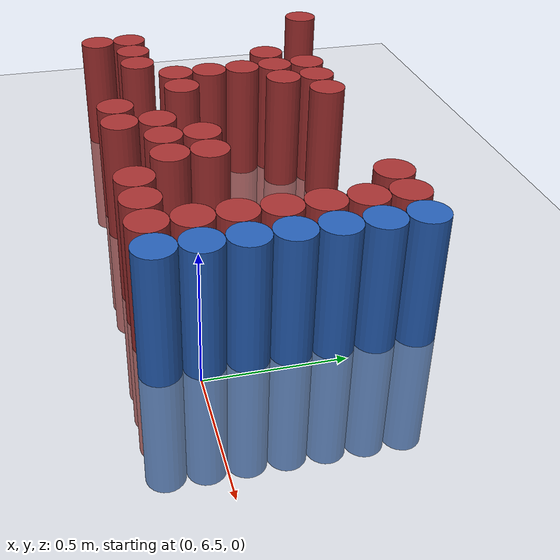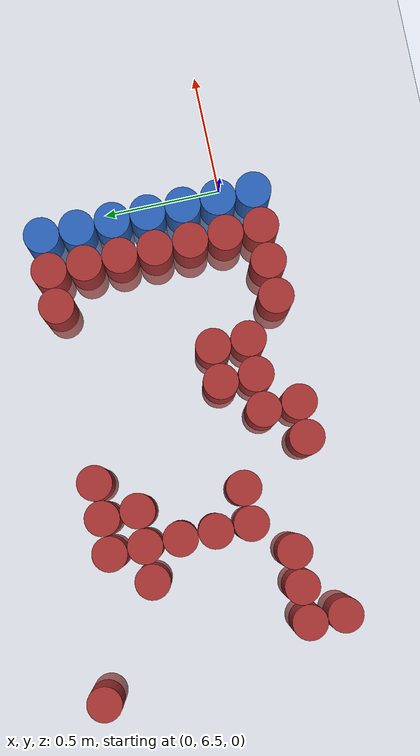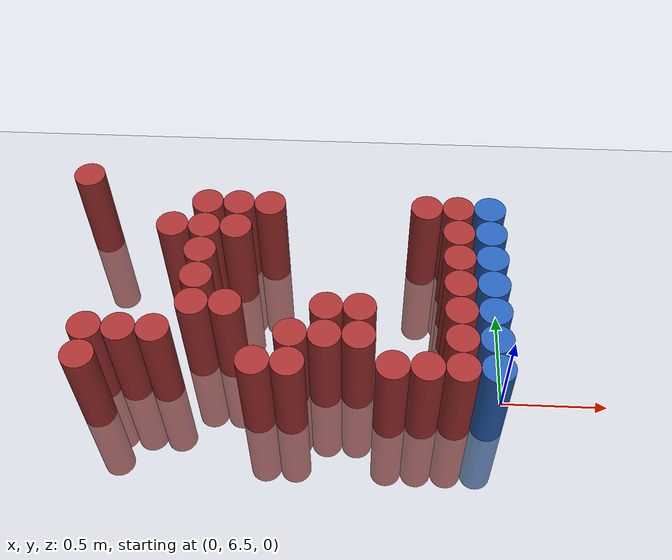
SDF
<sdf version="1.6">
 <world name="default">
  <model name="ground_plane">
   <static>1</static>
   <link name="link">
    <collision name="collision">
     <geometry><plane><normal>0 0 1</normal><size>100 100</size></plane></geometry>
     <surface><friction><ode><mu>100</mu><mu2>50</mu2></ode></friction></surface>
    </collision>
    <visual name="visual">
     <cast_shadows>0</cast_shadows>
     <geometry><plane><normal>0 0 1</normal><size>100 100</size></plane></geometry>
     <material>
      <script><uri>file://media/materials/scripts/gazebo.material</uri><name>Gazebo/Grey</name></script>
     </material>
    </visual>
   </link>
  </model>
  <model name="unit_cylinder_194">
   <static>1</static>
   <pose>-2.025000 7.425000 0.000000 0.000000 0.000000 0.000000</pose>
   <link name="link">
    <inertial>
     <mass>1</mass>
     <inertia><ixx>0.145833</ixx><ixy>0</ixy><ixz>0</ixz><iyy>0.145833</iyy><iyz>0</iyz><izz>0.125</izz></inertia>
    </inertial>
    <collision name="collision">
     <geometry><cylinder><radius>0.075000</radius><length>1</length></cylinder></geometry>
    </collision>
    <visual name="visual">
     <geometry><cylinder><radius>0.075000</radius><length>1</length></cylinder></geometry>
     <material>
      <ambient>0.648000 0.192000 0.192000 1</ambient>
      <diffuse>0.648000 0.192000 0.192000 1</diffuse>
     </material>
     <material>
      <script><name>Gazebo/Grey</name><uri>file://media/materials/scripts/gazebo.material</uri></script>
     </material>
    </visual>
    <sensor name="sensor_contact" type="contact"><contact><collision>collision</collision></contact></sensor>
   </link>
   <plugin filename="gz-sim-touchplugin-system" name="gz::sim::systems::TouchPlugin">
    <target>robot</target>
    <namespace>robot</namespace>
    <time>0.001</time>
    <enabled>true</enabled>
   </plugin>
  </model>
  <model name="unit_cylinder_198">
   <static>1</static>
   <pose>-1.875000 6.375000 0.000000 0.000000 0.000000 0.000000</pose>
   <link name="link">
    <inertial>
     <mass>1</mass>
     <inertia><ixx>0.145833</ixx><ixy>0</ixy><ixz>0</ixz><iyy>0.145833</iyy><iyz>0</iyz><izz>0.125</izz></inertia>
    </inertial>
    <collision name="collision">
     <geometry><cylinder><radius>0.075000</radius><length>1</length></cylinder></geometry>
    </collision>
    <visual name="visual">
     <geometry><cylinder><radius>0.075000</radius><length>1</length></cylinder></geometry>
     <material>
      <ambient>0.648000 0.192000 0.192000 1</ambient>
      <diffuse>0.648000 0.192000 0.192000 1</diffuse>
     </material>
     <material>
      <script><name>Gazebo/Grey</name><uri>file://media/materials/scripts/gazebo.material</uri></script>
     </material>
    </visual>
    <sensor name="sensor_contact" type="contact"><contact><collision>collision</collision></contact></sensor>
   </link>
   <plugin filename="gz-sim-touchplugin-system" name="gz::sim::systems::TouchPlugin">
    <target>robot</target>
    <namespace>robot</namespace>
    <time>0.001</time>
    <enabled>true</enabled>
   </plugin>
  </model>
  <model name="unit_cylinder_199">
   <static>1</static>
   <pose>-1.875000 6.525000 0.000000 0.000000 0.000000 0.000000</pose>
   <link name="link">
    <inertial>
     <mass>1</mass>
     <inertia><ixx>0.145833</ixx><ixy>0</ixy><ixz>0</ixz><iyy>0.145833</iyy><iyz>0</iyz><izz>0.125</izz></inertia>
    </inertial>
    <collision name="collision">
     <geometry><cylinder><radius>0.075000</radius><length>1</length></cylinder></geometry>
    </collision>
    <visual name="visual">
     <geometry><cylinder><radius>0.075000</radius><length>1</length></cylinder></geometry>
     <material>
      <ambient>0.648000 0.192000 0.192000 1</ambient>
      <diffuse>0.648000 0.192000 0.192000 1</diffuse>
     </material>
     <material>
      <script><name>Gazebo/Grey</name><uri>file://media/materials/scripts/gazebo.material</uri></script>
     </material>
    </visual>
    <sensor name="sensor_contact" type="contact"><contact><collision>collision</collision></contact></sensor>
   </link>
   <plugin filename="gz-sim-touchplugin-system" name="gz::sim::systems::TouchPlugin">
    <target>robot</target>
    <namespace>robot</namespace>
    <time>0.001</time>
    <enabled>true</enabled>
   </plugin>
  </model>
  <model name="unit_cylinder_205">
   <static>1</static>
   <pose>-1.725000 6.525000 0.000000 0.000000 0.000000 0.000000</pose>
   <link name="link">
    <inertial>
     <mass>1</mass>
     <inertia><ixx>0.145833</ixx><ixy>0</ixy><ixz>0</ixz><iyy>0.145833</iyy><iyz>0</iyz><izz>0.125</izz></inertia>
    </inertial>
    <collision name="collision">
     <geometry><cylinder><radius>0.075000</radius><length>1</length></cylinder></geometry>
    </collision>
    <visual name="visual">
     <geometry><cylinder><radius>0.075000</radius><length>1</length></cylinder></geometry>
     <material>
      <ambient>0.648000 0.192000 0.192000 1</ambient>
      <diffuse>0.648000 0.192000 0.192000 1</diffuse>
     </material>
     <material>
      <script><name>Gazebo/Grey</name><uri>file://media/materials/scripts/gazebo.material</uri></script>
     </material>
    </visual>
    <sensor name="sensor_contact" type="contact"><contact><collision>collision</collision></contact></sensor>
   </link>
   <plugin filename="gz-sim-touchplugin-system" name="gz::sim::systems::TouchPlugin">
    <target>robot</target>
    <namespace>robot</namespace>
    <time>0.001</time>
    <enabled>true</enabled>
   </plugin>
  </model>
  <model name="unit_cylinder_211">
   <static>1</static>
   <pose>-1.575000 6.525000 0.000000 0.000000 0.000000 0.000000</pose>
   <link name="link">
    <inertial>
     <mass>1</mass>
     <inertia><ixx>0.145833</ixx><ixy>0</ixy><ixz>0</ixz><iyy>0.145833</iyy><iyz>0</iyz><izz>0.125</izz></inertia>
    </inertial>
    <collision name="collision">
     <geometry><cylinder><radius>0.075000</radius><length>1</length></cylinder></geometry>
    </collision>
    <visual name="visual">
     <geometry><cylinder><radius>0.075000</radius><length>1</length></cylinder></geometry>
     <material>
      <ambient>0.648000 0.192000 0.192000 1</ambient>
      <diffuse>0.648000 0.192000 0.192000 1</diffuse>
     </material>
     <material>
      <script><name>Gazebo/Grey</name><uri>file://media/materials/scripts/gazebo.material</uri></script>
     </material>
    </visual>
    <sensor name="sensor_contact" type="contact"><contact><collision>collision</collision></contact></sensor>
   </link>
   <plugin filename="gz-sim-touchplugin-system" name="gz::sim::systems::TouchPlugin">
    <target>robot</target>
    <namespace>robot</namespace>
    <time>0.001</time>
    <enabled>true</enabled>
   </plugin>
  </model>
  <model name="unit_cylinder_212">
   <static>1</static>
   <pose>-1.575000 7.125000 0.000000 0.000000 0.000000 0.000000</pose>
   <link name="link">
    <inertial>
     <mass>1</mass>
     <inertia><ixx>0.145833</ixx><ixy>0</ixy><ixz>0</ixz><iyy>0.145833</iyy><iyz>0</iyz><izz>0.125</izz></inertia>
    </inertial>
    <collision name="collision">
     <geometry><cylinder><radius>0.075000</radius><length>1</length></cylinder></geometry>
    </collision>
    <visual name="visual">
     <geometry><cylinder><radius>0.075000</radius><length>1</length></cylinder></geometry>
     <material>
      <ambient>0.648000 0.192000 0.192000 1</ambient>
      <diffuse>0.648000 0.192000 0.192000 1</diffuse>
     </material>
     <material>
      <script><name>Gazebo/Grey</name><uri>file://media/materials/scripts/gazebo.material</uri></script>
     </material>
    </visual>
    <sensor name="sensor_contact" type="contact"><contact><collision>collision</collision></contact></sensor>
   </link>
   <plugin filename="gz-sim-touchplugin-system" name="gz::sim::systems::TouchPlugin">
    <target>robot</target>
    <namespace>robot</namespace>
    <time>0.001</time>
    <enabled>true</enabled>
   </plugin>
  </model>
  <model name="unit_cylinder_218">
   <static>1</static>
   <pose>-1.425000 6.675000 0.000000 0.000000 0.000000 0.000000</pose>
   <link name="link">
    <inertial>
     <mass>1</mass>
     <inertia><ixx>0.145833</ixx><ixy>0</ixy><ixz>0</ixz><iyy>0.145833</iyy><iyz>0</iyz><izz>0.125</izz></inertia>
    </inertial>
    <collision name="collision">
     <geometry><cylinder><radius>0.075000</radius><length>1</length></cylinder></geometry>
    </collision>
    <visual name="visual">
     <geometry><cylinder><radius>0.075000</radius><length>1</length></cylinder></geometry>
     <material>
      <ambient>0.648000 0.192000 0.192000 1</ambient>
      <diffuse>0.648000 0.192000 0.192000 1</diffuse>
     </material>
     <material>
      <script><name>Gazebo/Grey</name><uri>file://media/materials/scripts/gazebo.material</uri></script>
     </material>
    </visual>
    <sensor name="sensor_contact" type="contact"><contact><collision>collision</collision></contact></sensor>
   </link>
   <plugin filename="gz-sim-touchplugin-system" name="gz::sim::systems::TouchPlugin">
    <target>robot</target>
    <namespace>robot</namespace>
    <time>0.001</time>
    <enabled>true</enabled>
   </plugin>
  </model>
  <model name="unit_cylinder_219">
   <static>1</static>
   <pose>-1.425000 6.825000 0.000000 0.000000 0.000000 0.000000</pose>
   <link name="link">
    <inertial>
     <mass>1</mass>
     <inertia><ixx>0.145833</ixx><ixy>0</ixy><ixz>0</ixz><iyy>0.145833</iyy><iyz>0</iyz><izz>0.125</izz></inertia>
    </inertial>
    <collision name="collision">
     <geometry><cylinder><radius>0.075000</radius><length>1</length></cylinder></geometry>
    </collision>
    <visual name="visual">
     <geometry><cylinder><radius>0.075000</radius><length>1</length></cylinder></geometry>
     <material>
      <ambient>0.648000 0.192000 0.192000 1</ambient>
      <diffuse>0.648000 0.192000 0.192000 1</diffuse>
     </material>
     <material>
      <script><name>Gazebo/Grey</name><uri>file://media/materials/scripts/gazebo.material</uri></script>
     </material>
    </visual>
    <sensor name="sensor_contact" type="contact"><contact><collision>collision</collision></contact></sensor>
   </link>
   <plugin filename="gz-sim-touchplugin-system" name="gz::sim::systems::TouchPlugin">
    <target>robot</target>
    <namespace>robot</namespace>
    <time>0.001</time>
    <enabled>true</enabled>
   </plugin>
  </model>
  <model name="unit_cylinder_220">
   <static>1</static>
   <pose>-1.425000 6.975000 0.000000 0.000000 0.000000 0.000000</pose>
   <link name="link">
    <inertial>
     <mass>1</mass>
     <inertia><ixx>0.145833</ixx><ixy>0</ixy><ixz>0</ixz><iyy>0.145833</iyy><iyz>0</iyz><izz>0.125</izz></inertia>
    </inertial>
    <collision name="collision">
     <geometry><cylinder><radius>0.075000</radius><length>1</length></cylinder></geometry>
    </collision>
    <visual name="visual">
     <geometry><cylinder><radius>0.075000</radius><length>1</length></cylinder></geometry>
     <material>
      <ambient>0.648000 0.192000 0.192000 1</ambient>
      <diffuse>0.648000 0.192000 0.192000 1</diffuse>
     </material>
     <material>
      <script><name>Gazebo/Grey</name><uri>file://media/materials/scripts/gazebo.material</uri></script>
     </material>
    </visual>
    <sensor name="sensor_contact" type="contact"><contact><collision>collision</collision></contact></sensor>
   </link>
   <plugin filename="gz-sim-touchplugin-system" name="gz::sim::systems::TouchPlugin">
    <target>robot</target>
    <namespace>robot</namespace>
    <time>0.001</time>
    <enabled>true</enabled>
   </plugin>
  </model>
  <model name="unit_cylinder_221">
   <static>1</static>
   <pose>-1.425000 7.125000 0.000000 0.000000 0.000000 0.000000</pose>
   <link name="link">
    <inertial>
     <mass>1</mass>
     <inertia><ixx>0.145833</ixx><ixy>0</ixy><ixz>0</ixz><iyy>0.145833</iyy><iyz>0</iyz><izz>0.125</izz></inertia>
    </inertial>
    <collision name="collision">
     <geometry><cylinder><radius>0.075000</radius><length>1</length></cylinder></geometry>
    </collision>
    <visual name="visual">
     <geometry><cylinder><radius>0.075000</radius><length>1</length></cylinder></geometry>
     <material>
      <ambient>0.648000 0.192000 0.192000 1</ambient>
      <diffuse>0.648000 0.192000 0.192000 1</diffuse>
     </material>
     <material>
      <script><name>Gazebo/Grey</name><uri>file://media/materials/scripts/gazebo.material</uri></script>
     </material>
    </visual>
    <sensor name="sensor_contact" type="contact"><contact><collision>collision</collision></contact></sensor>
   </link>
   <plugin filename="gz-sim-touchplugin-system" name="gz::sim::systems::TouchPlugin">
    <target>robot</target>
    <namespace>robot</namespace>
    <time>0.001</time>
    <enabled>true</enabled>
   </plugin>
  </model>
  <model name="unit_cylinder_222">
   <static>1</static>
   <pose>-1.425000 7.275000 0.000000 0.000000 0.000000 0.000000</pose>
   <link name="link">
    <inertial>
     <mass>1</mass>
     <inertia><ixx>0.145833</ixx><ixy>0</ixy><ixz>0</ixz><iyy>0.145833</iyy><iyz>0</iyz><izz>0.125</izz></inertia>
    </inertial>
    <collision name="collision">
     <geometry><cylinder><radius>0.075000</radius><length>1</length></cylinder></geometry>
    </collision>
    <visual name="visual">
     <geometry><cylinder><radius>0.075000</radius><length>1</length></cylinder></geometry>
     <material>
      <ambient>0.648000 0.192000 0.192000 1</ambient>
      <diffuse>0.648000 0.192000 0.192000 1</diffuse>
     </material>
     <material>
      <script><name>Gazebo/Grey</name><uri>file://media/materials/scripts/gazebo.material</uri></script>
     </material>
    </visual>
    <sensor name="sensor_contact" type="contact"><contact><collision>collision</collision></contact></sensor>
   </link>
   <plugin filename="gz-sim-touchplugin-system" name="gz::sim::systems::TouchPlugin">
    <target>robot</target>
    <namespace>robot</namespace>
    <time>0.001</time>
    <enabled>true</enabled>
   </plugin>
  </model>
  <model name="unit_cylinder_228">
   <static>1</static>
   <pose>-1.275000 6.675000 0.000000 0.000000 0.000000 0.000000</pose>
   <link name="link">
    <inertial>
     <mass>1</mass>
     <inertia><ixx>0.145833</ixx><ixy>0</ixy><ixz>0</ixz><iyy>0.145833</iyy><iyz>0</iyz><izz>0.125</izz></inertia>
    </inertial>
    <collision name="collision">
     <geometry><cylinder><radius>0.075000</radius><length>1</length></cylinder></geometry>
    </collision>
    <visual name="visual">
     <geometry><cylinder><radius>0.075000</radius><length>1</length></cylinder></geometry>
     <material>
      <ambient>0.648000 0.192000 0.192000 1</ambient>
      <diffuse>0.648000 0.192000 0.192000 1</diffuse>
     </material>
     <material>
      <script><name>Gazebo/Grey</name><uri>file://media/materials/scripts/gazebo.material</uri></script>
     </material>
    </visual>
    <sensor name="sensor_contact" type="contact"><contact><collision>collision</collision></contact></sensor>
   </link>
   <plugin filename="gz-sim-touchplugin-system" name="gz::sim::systems::TouchPlugin">
    <target>robot</target>
    <namespace>robot</namespace>
    <time>0.001</time>
    <enabled>true</enabled>
   </plugin>
  </model>
  <model name="unit_cylinder_229">
   <static>1</static>
   <pose>-1.275000 7.125000 0.000000 0.000000 0.000000 0.000000</pose>
   <link name="link">
    <inertial>
     <mass>1</mass>
     <inertia><ixx>0.145833</ixx><ixy>0</ixy><ixz>0</ixz><iyy>0.145833</iyy><iyz>0</iyz><izz>0.125</izz></inertia>
    </inertial>
    <collision name="collision">
     <geometry><cylinder><radius>0.075000</radius><length>1</length></cylinder></geometry>
    </collision>
    <visual name="visual">
     <geometry><cylinder><radius>0.075000</radius><length>1</length></cylinder></geometry>
     <material>
      <ambient>0.648000 0.192000 0.192000 1</ambient>
      <diffuse>0.648000 0.192000 0.192000 1</diffuse>
     </material>
     <material>
      <script><name>Gazebo/Grey</name><uri>file://media/materials/scripts/gazebo.material</uri></script>
     </material>
    </visual>
    <sensor name="sensor_contact" type="contact"><contact><collision>collision</collision></contact></sensor>
   </link>
   <plugin filename="gz-sim-touchplugin-system" name="gz::sim::systems::TouchPlugin">
    <target>robot</target>
    <namespace>robot</namespace>
    <time>0.001</time>
    <enabled>true</enabled>
   </plugin>
  </model>
  <model name="unit_cylinder_230">
   <static>1</static>
   <pose>-1.275000 7.275000 0.000000 0.000000 0.000000 0.000000</pose>
   <link name="link">
    <inertial>
     <mass>1</mass>
     <inertia><ixx>0.145833</ixx><ixy>0</ixy><ixz>0</ixz><iyy>0.145833</iyy><iyz>0</iyz><izz>0.125</izz></inertia>
    </inertial>
    <collision name="collision">
     <geometry><cylinder><radius>0.075000</radius><length>1</length></cylinder></geometry>
    </collision>
    <visual name="visual">
     <geometry><cylinder><radius>0.075000</radius><length>1</length></cylinder></geometry>
     <material>
      <ambient>0.648000 0.192000 0.192000 1</ambient>
      <diffuse>0.648000 0.192000 0.192000 1</diffuse>
     </material>
     <material>
      <script><name>Gazebo/Grey</name><uri>file://media/materials/scripts/gazebo.material</uri></script>
     </material>
    </visual>
    <sensor name="sensor_contact" type="contact"><contact><collision>collision</collision></contact></sensor>
   </link>
   <plugin filename="gz-sim-touchplugin-system" name="gz::sim::systems::TouchPlugin">
    <target>robot</target>
    <namespace>robot</namespace>
    <time>0.001</time>
    <enabled>true</enabled>
   </plugin>
  </model>
  <model name="unit_cylinder_239">
   <static>1</static>
   <pose>-1.125000 6.375000 0.000000 0.000000 0.000000 0.000000</pose>
   <link name="link">
    <inertial>
     <mass>1</mass>
     <inertia><ixx>0.145833</ixx><ixy>0</ixy><ixz>0</ixz><iyy>0.145833</iyy><iyz>0</iyz><izz>0.125</izz></inertia>
    </inertial>
    <collision name="collision">
     <geometry><cylinder><radius>0.075000</radius><length>1</length></cylinder></geometry>
    </collision>
    <visual name="visual">
     <geometry><cylinder><radius>0.075000</radius><length>1</length></cylinder></geometry>
     <material>
      <ambient>0.648000 0.192000 0.192000 1</ambient>
      <diffuse>0.648000 0.192000 0.192000 1</diffuse>
     </material>
     <material>
      <script><name>Gazebo/Grey</name><uri>file://media/materials/scripts/gazebo.material</uri></script>
     </material>
    </visual>
    <sensor name="sensor_contact" type="contact"><contact><collision>collision</collision></contact></sensor>
   </link>
   <plugin filename="gz-sim-touchplugin-system" name="gz::sim::systems::TouchPlugin">
    <target>robot</target>
    <namespace>robot</namespace>
    <time>0.001</time>
    <enabled>true</enabled>
   </plugin>
  </model>
  <model name="unit_cylinder_240">
   <static>1</static>
   <pose>-1.125000 7.275000 0.000000 0.000000 0.000000 0.000000</pose>
   <link name="link">
    <inertial>
     <mass>1</mass>
     <inertia><ixx>0.145833</ixx><ixy>0</ixy><ixz>0</ixz><iyy>0.145833</iyy><iyz>0</iyz><izz>0.125</izz></inertia>
    </inertial>
    <collision name="collision">
     <geometry><cylinder><radius>0.075000</radius><length>1</length></cylinder></geometry>
    </collision>
    <visual name="visual">
     <geometry><cylinder><radius>0.075000</radius><length>1</length></cylinder></geometry>
     <material>
      <ambient>0.648000 0.192000 0.192000 1</ambient>
      <diffuse>0.648000 0.192000 0.192000 1</diffuse>
     </material>
     <material>
      <script><name>Gazebo/Grey</name><uri>file://media/materials/scripts/gazebo.material</uri></script>
     </material>
    </visual>
    <sensor name="sensor_contact" type="contact"><contact><collision>collision</collision></contact></sensor>
   </link>
   <plugin filename="gz-sim-touchplugin-system" name="gz::sim::systems::TouchPlugin">
    <target>robot</target>
    <namespace>robot</namespace>
    <time>0.001</time>
    <enabled>true</enabled>
   </plugin>
  </model>
  <model name="unit_cylinder_250">
   <static>1</static>
   <pose>-0.975000 6.375000 0.000000 0.000000 0.000000 0.000000</pose>
   <link name="link">
    <inertial>
     <mass>1</mass>
     <inertia><ixx>0.145833</ixx><ixy>0</ixy><ixz>0</ixz><iyy>0.145833</iyy><iyz>0</iyz><izz>0.125</izz></inertia>
    </inertial>
    <collision name="collision">
     <geometry><cylinder><radius>0.075000</radius><length>1</length></cylinder></geometry>
    </collision>
    <visual name="visual">
     <geometry><cylinder><radius>0.075000</radius><length>1</length></cylinder></geometry>
     <material>
      <ambient>0.648000 0.192000 0.192000 1</ambient>
      <diffuse>0.648000 0.192000 0.192000 1</diffuse>
     </material>
     <material>
      <script><name>Gazebo/Grey</name><uri>file://media/materials/scripts/gazebo.material</uri></script>
     </material>
    </visual>
    <sensor name="sensor_contact" type="contact"><contact><collision>collision</collision></contact></sensor>
   </link>
   <plugin filename="gz-sim-touchplugin-system" name="gz::sim::systems::TouchPlugin">
    <target>robot</target>
    <namespace>robot</namespace>
    <time>0.001</time>
    <enabled>true</enabled>
   </plugin>
  </model>
  <model name="unit_cylinder_251">
   <static>1</static>
   <pose>-0.975000 6.525000 0.000000 0.000000 0.000000 0.000000</pose>
   <link name="link">
    <inertial>
     <mass>1</mass>
     <inertia><ixx>0.145833</ixx><ixy>0</ixy><ixz>0</ixz><iyy>0.145833</iyy><iyz>0</iyz><izz>0.125</izz></inertia>
    </inertial>
    <collision name="collision">
     <geometry><cylinder><radius>0.075000</radius><length>1</length></cylinder></geometry>
    </collision>
    <visual name="visual">
     <geometry><cylinder><radius>0.075000</radius><length>1</length></cylinder></geometry>
     <material>
      <ambient>0.648000 0.192000 0.192000 1</ambient>
      <diffuse>0.648000 0.192000 0.192000 1</diffuse>
     </material>
     <material>
      <script><name>Gazebo/Grey</name><uri>file://media/materials/scripts/gazebo.material</uri></script>
     </material>
    </visual>
    <sensor name="sensor_contact" type="contact"><contact><collision>collision</collision></contact></sensor>
   </link>
   <plugin filename="gz-sim-touchplugin-system" name="gz::sim::systems::TouchPlugin">
    <target>robot</target>
    <namespace>robot</namespace>
    <time>0.001</time>
    <enabled>true</enabled>
   </plugin>
  </model>
  <model name="unit_cylinder_258">
   <static>1</static>
   <pose>-0.825000 6.525000 0.000000 0.000000 0.000000 0.000000</pose>
   <link name="link">
    <inertial>
     <mass>1</mass>
     <inertia><ixx>0.145833</ixx><ixy>0</ixy><ixz>0</ixz><iyy>0.145833</iyy><iyz>0</iyz><izz>0.125</izz></inertia>
    </inertial>
    <collision name="collision">
     <geometry><cylinder><radius>0.075000</radius><length>1</length></cylinder></geometry>
    </collision>
    <visual name="visual">
     <geometry><cylinder><radius>0.075000</radius><length>1</length></cylinder></geometry>
     <material>
      <ambient>0.648000 0.192000 0.192000 1</ambient>
      <diffuse>0.648000 0.192000 0.192000 1</diffuse>
     </material>
     <material>
      <script><name>Gazebo/Grey</name><uri>file://media/materials/scripts/gazebo.material</uri></script>
     </material>
    </visual>
    <sensor name="sensor_contact" type="contact"><contact><collision>collision</collision></contact></sensor>
   </link>
   <plugin filename="gz-sim-touchplugin-system" name="gz::sim::systems::TouchPlugin">
    <target>robot</target>
    <namespace>robot</namespace>
    <time>0.001</time>
    <enabled>true</enabled>
   </plugin>
  </model>
  <model name="unit_cylinder_259">
   <static>1</static>
   <pose>-0.825000 6.675000 0.000000 0.000000 0.000000 0.000000</pose>
   <link name="link">
    <inertial>
     <mass>1</mass>
     <inertia><ixx>0.145833</ixx><ixy>0</ixy><ixz>0</ixz><iyy>0.145833</iyy><iyz>0</iyz><izz>0.125</izz></inertia>
    </inertial>
    <collision name="collision">
     <geometry><cylinder><radius>0.075000</radius><length>1</length></cylinder></geometry>
    </collision>
    <visual name="visual">
     <geometry><cylinder><radius>0.075000</radius><length>1</length></cylinder></geometry>
     <material>
      <ambient>0.648000 0.192000 0.192000 1</ambient>
      <diffuse>0.648000 0.192000 0.192000 1</diffuse>
     </material>
     <material>
      <script><name>Gazebo/Grey</name><uri>file://media/materials/scripts/gazebo.material</uri></script>
     </material>
    </visual>
    <sensor name="sensor_contact" type="contact"><contact><collision>collision</collision></contact></sensor>
   </link>
   <plugin filename="gz-sim-touchplugin-system" name="gz::sim::systems::TouchPlugin">
    <target>robot</target>
    <namespace>robot</namespace>
    <time>0.001</time>
    <enabled>true</enabled>
   </plugin>
  </model>
  <model name="unit_cylinder_265">
   <static>1</static>
   <pose>-0.675000 6.525000 0.000000 0.000000 0.000000 0.000000</pose>
   <link name="link">
    <inertial>
     <mass>1</mass>
     <inertia><ixx>0.145833</ixx><ixy>0</ixy><ixz>0</ixz><iyy>0.145833</iyy><iyz>0</iyz><izz>0.125</izz></inertia>
    </inertial>
    <collision name="collision">
     <geometry><cylinder><radius>0.075000</radius><length>1</length></cylinder></geometry>
    </collision>
    <visual name="visual">
     <geometry><cylinder><radius>0.075000</radius><length>1</length></cylinder></geometry>
     <material>
      <ambient>0.648000 0.192000 0.192000 1</ambient>
      <diffuse>0.648000 0.192000 0.192000 1</diffuse>
     </material>
     <material>
      <script><name>Gazebo/Grey</name><uri>file://media/materials/scripts/gazebo.material</uri></script>
     </material>
    </visual>
    <sensor name="sensor_contact" type="contact"><contact><collision>collision</collision></contact></sensor>
   </link>
   <plugin filename="gz-sim-touchplugin-system" name="gz::sim::systems::TouchPlugin">
    <target>robot</target>
    <namespace>robot</namespace>
    <time>0.001</time>
    <enabled>true</enabled>
   </plugin>
  </model>
  <model name="unit_cylinder_266">
   <static>1</static>
   <pose>-0.675000 6.675000 0.000000 0.000000 0.000000 0.000000</pose>
   <link name="link">
    <inertial>
     <mass>1</mass>
     <inertia><ixx>0.145833</ixx><ixy>0</ixy><ixz>0</ixz><iyy>0.145833</iyy><iyz>0</iyz><izz>0.125</izz></inertia>
    </inertial>
    <collision name="collision">
     <geometry><cylinder><radius>0.075000</radius><length>1</length></cylinder></geometry>
    </collision>
    <visual name="visual">
     <geometry><cylinder><radius>0.075000</radius><length>1</length></cylinder></geometry>
     <material>
      <ambient>0.648000 0.192000 0.192000 1</ambient>
      <diffuse>0.648000 0.192000 0.192000 1</diffuse>
     </material>
     <material>
      <script><name>Gazebo/Grey</name><uri>file://media/materials/scripts/gazebo.material</uri></script>
     </material>
    </visual>
    <sensor name="sensor_contact" type="contact"><contact><collision>collision</collision></contact></sensor>
   </link>
   <plugin filename="gz-sim-touchplugin-system" name="gz::sim::systems::TouchPlugin">
    <target>robot</target>
    <namespace>robot</namespace>
    <time>0.001</time>
    <enabled>true</enabled>
   </plugin>
  </model>
  <model name="unit_cylinder_271">
   <static>1</static>
   <pose>-0.525000 6.375000 0.000000 0.000000 0.000000 0.000000</pose>
   <link name="link">
    <inertial>
     <mass>1</mass>
     <inertia><ixx>0.145833</ixx><ixy>0</ixy><ixz>0</ixz><iyy>0.145833</iyy><iyz>0</iyz><izz>0.125</izz></inertia>
    </inertial>
    <collision name="collision">
     <geometry><cylinder><radius>0.075000</radius><length>1</length></cylinder></geometry>
    </collision>
    <visual name="visual">
     <geometry><cylinder><radius>0.075000</radius><length>1</length></cylinder></geometry>
     <material>
      <ambient>0.648000 0.192000 0.192000 1</ambient>
      <diffuse>0.648000 0.192000 0.192000 1</diffuse>
     </material>
     <material>
      <script><name>Gazebo/Grey</name><uri>file://media/materials/scripts/gazebo.material</uri></script>
     </material>
    </visual>
    <sensor name="sensor_contact" type="contact"><contact><collision>collision</collision></contact></sensor>
   </link>
   <plugin filename="gz-sim-touchplugin-system" name="gz::sim::systems::TouchPlugin">
    <target>robot</target>
    <namespace>robot</namespace>
    <time>0.001</time>
    <enabled>true</enabled>
   </plugin>
  </model>
  <model name="unit_cylinder_281">
   <static>1</static>
   <pose>-0.375000 6.375000 0.000000 0.000000 0.000000 0.000000</pose>
   <link name="link">
    <inertial>
     <mass>1</mass>
     <inertia><ixx>0.145833</ixx><ixy>0</ixy><ixz>0</ixz><iyy>0.145833</iyy><iyz>0</iyz><izz>0.125</izz></inertia>
    </inertial>
    <collision name="collision">
     <geometry><cylinder><radius>0.075000</radius><length>1</length></cylinder></geometry>
    </collision>
    <visual name="visual">
     <geometry><cylinder><radius>0.075000</radius><length>1</length></cylinder></geometry>
     <material>
      <ambient>0.648000 0.192000 0.192000 1</ambient>
      <diffuse>0.648000 0.192000 0.192000 1</diffuse>
     </material>
     <material>
      <script><name>Gazebo/Grey</name><uri>file://media/materials/scripts/gazebo.material</uri></script>
     </material>
    </visual>
    <sensor name="sensor_contact" type="contact"><contact><collision>collision</collision></contact></sensor>
   </link>
   <plugin filename="gz-sim-touchplugin-system" name="gz::sim::systems::TouchPlugin">
    <target>robot</target>
    <namespace>robot</namespace>
    <time>0.001</time>
    <enabled>true</enabled>
   </plugin>
  </model>
  <model name="unit_cylinder_282">
   <static>1</static>
   <pose>-0.375000 7.275000 0.000000 0.000000 0.000000 0.000000</pose>
   <link name="link">
    <inertial>
     <mass>1</mass>
     <inertia><ixx>0.145833</ixx><ixy>0</ixy><ixz>0</ixz><iyy>0.145833</iyy><iyz>0</iyz><izz>0.125</izz></inertia>
    </inertial>
    <collision name="collision">
     <geometry><cylinder><radius>0.075000</radius><length>1</length></cylinder></geometry>
    </collision>
    <visual name="visual">
     <geometry><cylinder><radius>0.075000</radius><length>1</length></cylinder></geometry>
     <material>
      <ambient>0.648000 0.192000 0.192000 1</ambient>
      <diffuse>0.648000 0.192000 0.192000 1</diffuse>
     </material>
     <material>
      <script><name>Gazebo/Grey</name><uri>file://media/materials/scripts/gazebo.material</uri></script>
     </material>
    </visual>
    <sensor name="sensor_contact" type="contact"><contact><collision>collision</collision></contact></sensor>
   </link>
   <plugin filename="gz-sim-touchplugin-system" name="gz::sim::systems::TouchPlugin">
    <target>robot</target>
    <namespace>robot</namespace>
    <time>0.001</time>
    <enabled>true</enabled>
   </plugin>
  </model>
  <model name="unit_cylinder_295">
   <static>1</static>
   <pose>-0.225000 6.375000 0.000000 0.000000 0.000000 0.000000</pose>
   <link name="link">
    <inertial>
     <mass>1</mass>
     <inertia><ixx>0.145833</ixx><ixy>0</ixy><ixz>0</ixz><iyy>0.145833</iyy><iyz>0</iyz><izz>0.125</izz></inertia>
    </inertial>
    <collision name="collision">
     <geometry><cylinder><radius>0.075000</radius><length>1</length></cylinder></geometry>
    </collision>
    <visual name="visual">
     <geometry><cylinder><radius>0.075000</radius><length>1</length></cylinder></geometry>
     <material>
      <ambient>0.648000 0.192000 0.192000 1</ambient>
      <diffuse>0.648000 0.192000 0.192000 1</diffuse>
     </material>
     <material>
      <script><name>Gazebo/Grey</name><uri>file://media/materials/scripts/gazebo.material</uri></script>
     </material>
    </visual>
    <sensor name="sensor_contact" type="contact"><contact><collision>collision</collision></contact></sensor>
   </link>
   <plugin filename="gz-sim-touchplugin-system" name="gz::sim::systems::TouchPlugin">
    <target>robot</target>
    <namespace>robot</namespace>
    <time>0.001</time>
    <enabled>true</enabled>
   </plugin>
  </model>
  <model name="unit_cylinder_296">
   <static>1</static>
   <pose>-0.225000 6.525000 0.000000 0.000000 0.000000 0.000000</pose>
   <link name="link">
    <inertial>
     <mass>1</mass>
     <inertia><ixx>0.145833</ixx><ixy>0</ixy><ixz>0</ixz><iyy>0.145833</iyy><iyz>0</iyz><izz>0.125</izz></inertia>
    </inertial>
    <collision name="collision">
     <geometry><cylinder><radius>0.075000</radius><length>1</length></cylinder></geometry>
    </collision>
    <visual name="visual">
     <geometry><cylinder><radius>0.075000</radius><length>1</length></cylinder></geometry>
     <material>
      <ambient>0.648000 0.192000 0.192000 1</ambient>
      <diffuse>0.648000 0.192000 0.192000 1</diffuse>
     </material>
     <material>
      <script><name>Gazebo/Grey</name><uri>file://media/materials/scripts/gazebo.material</uri></script>
     </material>
    </visual>
    <sensor name="sensor_contact" type="contact"><contact><collision>collision</collision></contact></sensor>
   </link>
   <plugin filename="gz-sim-touchplugin-system" name="gz::sim::systems::TouchPlugin">
    <target>robot</target>
    <namespace>robot</namespace>
    <time>0.001</time>
    <enabled>true</enabled>
   </plugin>
  </model>
  <model name="unit_cylinder_297">
   <static>1</static>
   <pose>-0.225000 6.675000 0.000000 0.000000 0.000000 0.000000</pose>
   <link name="link">
    <inertial>
     <mass>1</mass>
     <inertia><ixx>0.145833</ixx><ixy>0</ixy><ixz>0</ixz><iyy>0.145833</iyy><iyz>0</iyz><izz>0.125</izz></inertia>
    </inertial>
    <collision name="collision">
     <geometry><cylinder><radius>0.075000</radius><length>1</length></cylinder></geometry>
    </collision>
    <visual name="visual">
     <geometry><cylinder><radius>0.075000</radius><length>1</length></cylinder></geometry>
     <material>
      <ambient>0.648000 0.192000 0.192000 1</ambient>
      <diffuse>0.648000 0.192000 0.192000 1</diffuse>
     </material>
     <material>
      <script><name>Gazebo/Grey</name><uri>file://media/materials/scripts/gazebo.material</uri></script>
     </material>
    </visual>
    <sensor name="sensor_contact" type="contact"><contact><collision>collision</collision></contact></sensor>
   </link>
   <plugin filename="gz-sim-touchplugin-system" name="gz::sim::systems::TouchPlugin">
    <target>robot</target>
    <namespace>robot</namespace>
    <time>0.001</time>
    <enabled>true</enabled>
   </plugin>
  </model>
  <model name="unit_cylinder_298">
   <static>1</static>
   <pose>-0.225000 6.825000 0.000000 0.000000 0.000000 0.000000</pose>
   <link name="link">
    <inertial>
     <mass>1</mass>
     <inertia><ixx>0.145833</ixx><ixy>0</ixy><ixz>0</ixz><iyy>0.145833</iyy><iyz>0</iyz><izz>0.125</izz></inertia>
    </inertial>
    <collision name="collision">
     <geometry><cylinder><radius>0.075000</radius><length>1</length></cylinder></geometry>
    </collision>
    <visual name="visual">
     <geometry><cylinder><radius>0.075000</radius><length>1</length></cylinder></geometry>
     <material>
      <ambient>0.648000 0.192000 0.192000 1</ambient>
      <diffuse>0.648000 0.192000 0.192000 1</diffuse>
     </material>
     <material>
      <script><name>Gazebo/Grey</name><uri>file://media/materials/scripts/gazebo.material</uri></script>
     </material>
    </visual>
    <sensor name="sensor_contact" type="contact"><contact><collision>collision</collision></contact></sensor>
   </link>
   <plugin filename="gz-sim-touchplugin-system" name="gz::sim::systems::TouchPlugin">
    <target>robot</target>
    <namespace>robot</namespace>
    <time>0.001</time>
    <enabled>true</enabled>
   </plugin>
  </model>
  <model name="unit_cylinder_299">
   <static>1</static>
   <pose>-0.225000 6.975000 0.000000 0.000000 0.000000 0.000000</pose>
   <link name="link">
    <inertial>
     <mass>1</mass>
     <inertia><ixx>0.145833</ixx><ixy>0</ixy><ixz>0</ixz><iyy>0.145833</iyy><iyz>0</iyz><izz>0.125</izz></inertia>
    </inertial>
    <collision name="collision">
     <geometry><cylinder><radius>0.075000</radius><length>1</length></cylinder></geometry>
    </collision>
    <visual name="visual">
     <geometry><cylinder><radius>0.075000</radius><length>1</length></cylinder></geometry>
     <material>
      <ambient>0.648000 0.192000 0.192000 1</ambient>
      <diffuse>0.648000 0.192000 0.192000 1</diffuse>
     </material>
     <material>
      <script><name>Gazebo/Grey</name><uri>file://media/materials/scripts/gazebo.material</uri></script>
     </material>
    </visual>
    <sensor name="sensor_contact" type="contact"><contact><collision>collision</collision></contact></sensor>
   </link>
   <plugin filename="gz-sim-touchplugin-system" name="gz::sim::systems::TouchPlugin">
    <target>robot</target>
    <namespace>robot</namespace>
    <time>0.001</time>
    <enabled>true</enabled>
   </plugin>
  </model>
  <model name="unit_cylinder_300">
   <static>1</static>
   <pose>-0.225000 7.125000 0.000000 0.000000 0.000000 0.000000</pose>
   <link name="link">
    <inertial>
     <mass>1</mass>
     <inertia><ixx>0.145833</ixx><ixy>0</ixy><ixz>0</ixz><iyy>0.145833</iyy><iyz>0</iyz><izz>0.125</izz></inertia>
    </inertial>
    <collision name="collision">
     <geometry><cylinder><radius>0.075000</radius><length>1</length></cylinder></geometry>
    </collision>
    <visual name="visual">
     <geometry><cylinder><radius>0.075000</radius><length>1</length></cylinder></geometry>
     <material>
      <ambient>0.648000 0.192000 0.192000 1</ambient>
      <diffuse>0.648000 0.192000 0.192000 1</diffuse>
     </material>
     <material>
      <script><name>Gazebo/Grey</name><uri>file://media/materials/scripts/gazebo.material</uri></script>
     </material>
    </visual>
    <sensor name="sensor_contact" type="contact"><contact><collision>collision</collision></contact></sensor>
   </link>
   <plugin filename="gz-sim-touchplugin-system" name="gz::sim::systems::TouchPlugin">
    <target>robot</target>
    <namespace>robot</namespace>
    <time>0.001</time>
    <enabled>true</enabled>
   </plugin>
  </model>
  <model name="unit_cylinder_301">
   <static>1</static>
   <pose>-0.225000 7.275000 0.000000 0.000000 0.000000 0.000000</pose>
   <link name="link">
    <inertial>
     <mass>1</mass>
     <inertia><ixx>0.145833</ixx><ixy>0</ixy><ixz>0</ixz><iyy>0.145833</iyy><iyz>0</iyz><izz>0.125</izz></inertia>
    </inertial>
    <collision name="collision">
     <geometry><cylinder><radius>0.075000</radius><length>1</length></cylinder></geometry>
    </collision>
    <visual name="visual">
     <geometry><cylinder><radius>0.075000</radius><length>1</length></cylinder></geometry>
     <material>
      <ambient>0.648000 0.192000 0.192000 1</ambient>
      <diffuse>0.648000 0.192000 0.192000 1</diffuse>
     </material>
     <material>
      <script><name>Gazebo/Grey</name><uri>file://media/materials/scripts/gazebo.material</uri></script>
     </material>
    </visual>
    <sensor name="sensor_contact" type="contact"><contact><collision>collision</collision></contact></sensor>
   </link>
   <plugin filename="gz-sim-touchplugin-system" name="gz::sim::systems::TouchPlugin">
    <target>robot</target>
    <namespace>robot</namespace>
    <time>0.001</time>
    <enabled>true</enabled>
   </plugin>
  </model>
  <model name="unit_cylinder_325">
   <static>1</static>
   <pose>-0.075000 6.375000 0.000000 0.000000 0.000000 0.000000</pose>
   <link name="link">
    <inertial>
     <mass>1</mass>
     <inertia><ixx>0.145833</ixx><ixy>0</ixy><ixz>0</ixz><iyy>0.145833</iyy><iyz>0</iyz><izz>0.125</izz></inertia>
    </inertial>
    <collision name="collision">
     <geometry><cylinder><radius>0.075000</radius><length>1</length></cylinder></geometry>
    </collision>
    <visual name="visual">
     <geometry><cylinder><radius>0.075000</radius><length>1</length></cylinder></geometry>
     <material>
      <ambient>0.152000 0.379000 0.720000 1</ambient>
      <diffuse>0.152000 0.379000 0.720000 1</diffuse>
     </material>
     <material>
      <script><name>Gazebo/Grey</name><uri>file://media/materials/scripts/gazebo.material</uri></script>
     </material>
    </visual>
    <sensor name="sensor_contact" type="contact"><contact><collision>collision</collision></contact></sensor>
   </link>
   <plugin filename="gz-sim-touchplugin-system" name="gz::sim::systems::TouchPlugin">
    <target>robot</target>
    <namespace>robot</namespace>
    <time>0.001</time>
    <enabled>true</enabled>
   </plugin>
  </model>
  <model name="unit_cylinder_326">
   <static>1</static>
   <pose>-0.075000 6.525000 0.000000 0.000000 0.000000 0.000000</pose>
   <link name="link">
    <inertial>
     <mass>1</mass>
     <inertia><ixx>0.145833</ixx><ixy>0</ixy><ixz>0</ixz><iyy>0.145833</iyy><iyz>0</iyz><izz>0.125</izz></inertia>
    </inertial>
    <collision name="collision">
     <geometry><cylinder><radius>0.075000</radius><length>1</length></cylinder></geometry>
    </collision>
    <visual name="visual">
     <geometry><cylinder><radius>0.075000</radius><length>1</length></cylinder></geometry>
     <material>
      <ambient>0.152000 0.379000 0.720000 1</ambient>
      <diffuse>0.152000 0.379000 0.720000 1</diffuse>
     </material>
     <material>
      <script><name>Gazebo/Grey</name><uri>file://media/materials/scripts/gazebo.material</uri></script>
     </material>
    </visual>
    <sensor name="sensor_contact" type="contact"><contact><collision>collision</collision></contact></sensor>
   </link>
   <plugin filename="gz-sim-touchplugin-system" name="gz::sim::systems::TouchPlugin">
    <target>robot</target>
    <namespace>robot</namespace>
    <time>0.001</time>
    <enabled>true</enabled>
   </plugin>
  </model>
  <model name="unit_cylinder_327">
   <static>1</static>
   <pose>-0.075000 6.675000 0.000000 0.000000 0.000000 0.000000</pose>
   <link name="link">
    <inertial>
     <mass>1</mass>
     <inertia><ixx>0.145833</ixx><ixy>0</ixy><ixz>0</ixz><iyy>0.145833</iyy><iyz>0</iyz><izz>0.125</izz></inertia>
    </inertial>
    <collision name="collision">
     <geometry><cylinder><radius>0.075000</radius><length>1</length></cylinder></geometry>
    </collision>
    <visual name="visual">
     <geometry><cylinder><radius>0.075000</radius><length>1</length></cylinder></geometry>
     <material>
      <ambient>0.152000 0.379000 0.720000 1</ambient>
      <diffuse>0.152000 0.379000 0.720000 1</diffuse>
     </material>
     <material>
      <script><name>Gazebo/Grey</name><uri>file://media/materials/scripts/gazebo.material</uri></script>
     </material>
    </visual>
    <sensor name="sensor_contact" type="contact"><contact><collision>collision</collision></contact></sensor>
   </link>
   <plugin filename="gz-sim-touchplugin-system" name="gz::sim::systems::TouchPlugin">
    <target>robot</target>
    <namespace>robot</namespace>
    <time>0.001</time>
    <enabled>true</enabled>
   </plugin>
  </model>
  <model name="unit_cylinder_328">
   <static>1</static>
   <pose>-0.075000 6.825000 0.000000 0.000000 0.000000 0.000000</pose>
   <link name="link">
    <inertial>
     <mass>1</mass>
     <inertia><ixx>0.145833</ixx><ixy>0</ixy><ixz>0</ixz><iyy>0.145833</iyy><iyz>0</iyz><izz>0.125</izz></inertia>
    </inertial>
    <collision name="collision">
     <geometry><cylinder><radius>0.075000</radius><length>1</length></cylinder></geometry>
    </collision>
    <visual name="visual">
     <geometry><cylinder><radius>0.075000</radius><length>1</length></cylinder></geometry>
     <material>
      <ambient>0.152000 0.379000 0.720000 1</ambient>
      <diffuse>0.152000 0.379000 0.720000 1</diffuse>
     </material>
     <material>
      <script><name>Gazebo/Grey</name><uri>file://media/materials/scripts/gazebo.material</uri></script>
     </material>
    </visual>
    <sensor name="sensor_contact" type="contact"><contact><collision>collision</collision></contact></sensor>
   </link>
   <plugin filename="gz-sim-touchplugin-system" name="gz::sim::systems::TouchPlugin">
    <target>robot</target>
    <namespace>robot</namespace>
    <time>0.001</time>
    <enabled>true</enabled>
   </plugin>
  </model>
  <model name="unit_cylinder_329">
   <static>1</static>
   <pose>-0.075000 6.975000 0.000000 0.000000 0.000000 0.000000</pose>
   <link name="link">
    <inertial>
     <mass>1</mass>
     <inertia><ixx>0.145833</ixx><ixy>0</ixy><ixz>0</ixz><iyy>0.145833</iyy><iyz>0</iyz><izz>0.125</izz></inertia>
    </inertial>
    <collision name="collision">
     <geometry><cylinder><radius>0.075000</radius><length>1</length></cylinder></geometry>
    </collision>
    <visual name="visual">
     <geometry><cylinder><radius>0.075000</radius><length>1</length></cylinder></geometry>
     <material>
      <ambient>0.152000 0.379000 0.720000 1</ambient>
      <diffuse>0.152000 0.379000 0.720000 1</diffuse>
     </material>
     <material>
      <script><name>Gazebo/Grey</name><uri>file://media/materials/scripts/gazebo.material</uri></script>
     </material>
    </visual>
    <sensor name="sensor_contact" type="contact"><contact><collision>collision</collision></contact></sensor>
   </link>
   <plugin filename="gz-sim-touchplugin-system" name="gz::sim::systems::TouchPlugin">
    <target>robot</target>
    <namespace>robot</namespace>
    <time>0.001</time>
    <enabled>true</enabled>
   </plugin>
  </model>
  <model name="unit_cylinder_330">
   <static>1</static>
   <pose>-0.075000 7.125000 0.000000 0.000000 0.000000 0.000000</pose>
   <link name="link">
    <inertial>
     <mass>1</mass>
     <inertia><ixx>0.145833</ixx><ixy>0</ixy><ixz>0</ixz><iyy>0.145833</iyy><iyz>0</iyz><izz>0.125</izz></inertia>
    </inertial>
    <collision name="collision">
     <geometry><cylinder><radius>0.075000</radius><length>1</length></cylinder></geometry>
    </collision>
    <visual name="visual">
     <geometry><cylinder><radius>0.075000</radius><length>1</length></cylinder></geometry>
     <material>
      <ambient>0.152000 0.379000 0.720000 1</ambient>
      <diffuse>0.152000 0.379000 0.720000 1</diffuse>
     </material>
     <material>
      <script><name>Gazebo/Grey</name><uri>file://media/materials/scripts/gazebo.material</uri></script>
     </material>
    </visual>
    <sensor name="sensor_contact" type="contact"><contact><collision>collision</collision></contact></sensor>
   </link>
   <plugin filename="gz-sim-touchplugin-system" name="gz::sim::systems::TouchPlugin">
    <target>robot</target>
    <namespace>robot</namespace>
    <time>0.001</time>
    <enabled>true</enabled>
   </plugin>
  </model>
  <model name="unit_cylinder_331">
   <static>1</static>
   <pose>-0.075000 7.275000 0.000000 0.000000 0.000000 0.000000</pose>
   <link name="link">
    <inertial>
     <mass>1</mass>
     <inertia><ixx>0.145833</ixx><ixy>0</ixy><ixz>0</ixz><iyy>0.145833</iyy><iyz>0</iyz><izz>0.125</izz></inertia>
    </inertial>
    <collision name="collision">
     <geometry><cylinder><radius>0.075000</radius><length>1</length></cylinder></geometry>
    </collision>
    <visual name="visual">
     <geometry><cylinder><radius>0.075000</radius><length>1</length></cylinder></geometry>
     <material>
      <ambient>0.152000 0.379000 0.720000 1</ambient>
      <diffuse>0.152000 0.379000 0.720000 1</diffuse>
     </material>
     <material>
      <script><name>Gazebo/Grey</name><uri>file://media/materials/scripts/gazebo.material</uri></script>
     </material>
    </visual>
    <sensor name="sensor_contact" type="contact"><contact><collision>collision</collision></contact></sensor>
   </link>
   <plugin filename="gz-sim-touchplugin-system" name="gz::sim::systems::TouchPlugin">
    <target>robot</target>
    <namespace>robot</namespace>
    <time>0.001</time>
    <enabled>true</enabled>
   </plugin>
  </model>
 </world>
</sdf>
